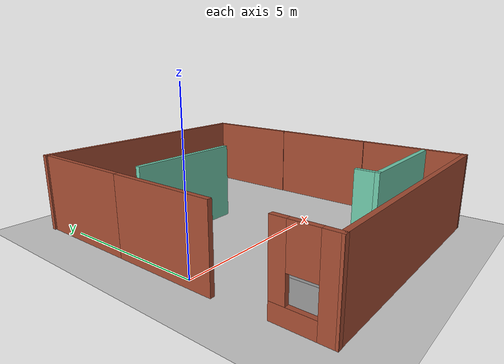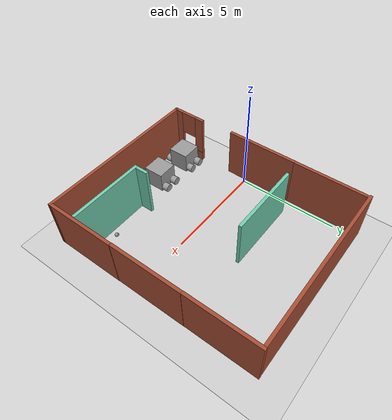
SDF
<sdf version="1.7">
 <world name="default">
  <plugin name="hello" filename="libhello.so"/>
  <light name="sun" type="directional">
   <pose>0 0 10 0 -0 0</pose>
   <diffuse>0.8 0.8 0.8 1</diffuse>
   <specular>0.2 0.2 0.2 1</specular>
   <attenuation>
    <range>1000</range>
    <constant>0.9</constant>
    <linear>0.01</linear>
    <quadratic>0.001</quadratic>
   </attenuation>
   <direction>-0.5 0.1 -0.9</direction>
   <spot><inner_angle>0</inner_angle><outer_angle>0</outer_angle><falloff>0</falloff></spot>
  </light>
  <model name="ground_plane">
   <static>1</static>
   <link name="link">
    <collision name="collision">
     <geometry><plane><normal>0 0 1</normal><size>100 100</size></plane></geometry>
     <surface>
      <contact><collide_bitmask>65535</collide_bitmask></contact>
      <friction><ode><mu>100</mu><mu2>50</mu2></ode></friction>
     </surface>
    </collision>
    <visual name="visual">
     <cast_shadows>0</cast_shadows>
     <geometry><plane><normal>0 0 1</normal><size>100 100</size></plane></geometry>
     <material>
      <script><uri>file://media/materials/scripts/gazebo.material</uri><name>Gazebo/Grey</name></script>
     </material>
    </visual>
   </link>
  </model>
  <gravity>0 0 -9.8</gravity>
  <magnetic_field>6e-06 2.3e-05 -4.2e-05</magnetic_field>
  <atmosphere type="adiabatic"/>
  <physics name="default_physics" default="0" type="ode">
   <max_step_size>0.001</max_step_size>
   <real_time_factor>1</real_time_factor>
   <real_time_update_rate>1000</real_time_update_rate>
  </physics>
  <scene><ambient>0.4 0.4 0.4 1</ambient><background>0.7 0.7 0.7 1</background><shadows>1</shadows></scene>
  <spherical_coordinates>
   <surface_model>EARTH_WGS84</surface_model>
   <latitude_deg>0</latitude_deg>
   <longitude_deg>0</longitude_deg>
   <elevation>0</elevation>
   <heading_deg>0</heading_deg>
  </spherical_coordinates>
  <model name="model">
   <link name="link_1">
    <inertial>
     <mass>1</mass>
     <inertia>
      <ixx>0.166667</ixx>
      <ixy>0</ixy>
      <ixz>0</ixz>
      <iyy>0.166667</iyy>
      <iyz>0</iyz>
      <izz>0.166667</izz>
     </inertia>
    </inertial>
    <pose>-1.26548 -3.71743 0.72499 0 -0 0</pose>
    <visual name="visual">
     <geometry><box><size>1 1 1</size></box></geometry>
     <material>
      <lighting>1</lighting>
      <script><uri>file://media/materials/scripts/gazebo.material</uri><name>Gazebo/Grey</name></script>
      <shader type="pixel"/>
      <emissive>0 0 0 1</emissive>
     </material>
    </visual>
    <collision name="collision">
     <geometry><box><size>1 1 1</size></box></geometry>
     <surface>
      <friction>
       <ode><mu>1</mu><mu2>1</mu2><fdir1>0 0 0</fdir1><slip1>0</slip1><slip2>0</slip2></ode>
       <torsional>
        <coefficient>1</coefficient>
        <patch_radius>0</patch_radius>
        <surface_radius>0</surface_radius>
        <use_patch_radius>1</use_patch_radius>
        <ode><slip>0</slip></ode>
       </torsional>
      </friction>
      <bounce><restitution_coefficient>0</restitution_coefficient><threshold>1e+06</threshold></bounce>
      <contact>
       <collide_without_contact>0</collide_without_contact>
       <collide_without_contact_bitmask>1</collide_without_contact_bitmask>
       <collide_bitmask>1</collide_bitmask>
       <ode>
        <soft_cfm>0</soft_cfm>
        <soft_erp>0.2</soft_erp>
        <kp>1e+13</kp>
        <kd>1</kd>
        <max_vel>0.01</max_vel>
        <min_depth>0</min_depth>
       </ode>
       <bullet>
        <split_impulse>1</split_impulse>
        <split_impulse_penetration_threshold>-0.01</split_impulse_penetration_threshold>
        <soft_cfm>0</soft_cfm>
        <soft_erp>0.2</soft_erp>
        <kp>1e+13</kp>
        <kd>1</kd>
       </bullet>
      </contact>
     </surface>
    </collision>
   </link>
   <link name="link_3">
    <inertial>
     <mass>1</mass>
     <inertia><ixx>0.145833</ixx><ixy>0</ixy><ixz>0</ixz><iyy>0.145833</iyy><iyz>0</iyz><izz>0.125</izz></inertia>
     <pose>0 0 0 1.5707 -0 0</pose>
    </inertial>
    <pose>-1.56548 -4.36745 0.425004 1.5707 -0 0</pose>
    <visual name="visual">
     <geometry><cylinder><radius>0.2</radius><length>0.3</length></cylinder></geometry>
     <material>
      <lighting>1</lighting>
      <script><uri>file://media/materials/scripts/gazebo.material</uri><name>Gazebo/Grey</name></script>
      <shader type="pixel"><normal_map>__default__</normal_map></shader>
      <ambient>0.3 0.3 0.3 1</ambient>
      <diffuse>0.7 0.7 0.7 1</diffuse>
      <specular>0.01 0.01 0.01 1</specular>
      <emissive>0 0 0 1</emissive>
     </material>
    </visual>
    <collision name="collision">
     <geometry><cylinder><radius>0.2</radius><length>0.3</length></cylinder></geometry>
     <surface>
      <friction>
       <ode><mu>1</mu><mu2>1</mu2><fdir1>0 0 0</fdir1><slip1>0</slip1><slip2>0</slip2></ode>
       <torsional>
        <coefficient>1</coefficient>
        <patch_radius>0</patch_radius>
        <surface_radius>0</surface_radius>
        <use_patch_radius>1</use_patch_radius>
        <ode><slip>0</slip></ode>
       </torsional>
      </friction>
      <bounce><restitution_coefficient>0</restitution_coefficient><threshold>1e+06</threshold></bounce>
      <contact>
       <collide_without_contact>0</collide_without_contact>
       <collide_without_contact_bitmask>1</collide_without_contact_bitmask>
       <collide_bitmask>1</collide_bitmask>
       <ode>
        <soft_cfm>0</soft_cfm>
        <soft_erp>0.2</soft_erp>
        <kp>1e+13</kp>
        <kd>1</kd>
        <max_vel>0.01</max_vel>
        <min_depth>0</min_depth>
       </ode>
       <bullet>
        <split_impulse>1</split_impulse>
        <split_impulse_penetration_threshold>-0.01</split_impulse_penetration_threshold>
        <soft_cfm>0</soft_cfm>
        <soft_erp>0.2</soft_erp>
        <kp>1e+13</kp>
        <kd>1</kd>
       </bullet>
      </contact>
     </surface>
    </collision>
   </link>
   <link name="link_3_clone">
    <inertial>
     <mass>1</mass>
     <inertia><ixx>0.145833</ixx><ixy>0</ixy><ixz>0</ixz><iyy>0.145833</iyy><iyz>0</iyz><izz>0.125</izz></inertia>
     <pose>0 0 0 1.5707 -0 0</pose>
    </inertial>
    <pose>-1.56523 -3.06657 0.425002 1.5707 -0 0</pose>
    <visual name="visual">
     <geometry><cylinder><radius>0.2</radius><length>0.3</length></cylinder></geometry>
     <material>
      <lighting>1</lighting>
      <script><uri>file://media/materials/scripts/gazebo.material</uri><name>Gazebo/Grey</name></script>
      <shader type="pixel"><normal_map>__default__</normal_map></shader>
      <ambient>0.3 0.3 0.3 1</ambient>
      <diffuse>0.7 0.7 0.7 1</diffuse>
      <specular>0.01 0.01 0.01 1</specular>
      <emissive>0 0 0 1</emissive>
     </material>
    </visual>
    <collision name="collision">
     <geometry><cylinder><radius>0.2</radius><length>0.3</length></cylinder></geometry>
     <surface>
      <friction>
       <ode><mu>1</mu><mu2>1</mu2><fdir1>0 0 0</fdir1><slip1>0</slip1><slip2>0</slip2></ode>
       <torsional>
        <coefficient>1</coefficient>
        <patch_radius>0</patch_radius>
        <surface_radius>0</surface_radius>
        <use_patch_radius>1</use_patch_radius>
        <ode><slip>0</slip></ode>
       </torsional>
      </friction>
      <bounce><restitution_coefficient>0</restitution_coefficient><threshold>1e+06</threshold></bounce>
      <contact>
       <collide_without_contact>0</collide_without_contact>
       <collide_without_contact_bitmask>1</collide_without_contact_bitmask>
       <collide_bitmask>1</collide_bitmask>
       <ode>
        <soft_cfm>0</soft_cfm>
        <soft_erp>0.2</soft_erp>
        <kp>1e+13</kp>
        <kd>1</kd>
        <max_vel>0.01</max_vel>
        <min_depth>0</min_depth>
       </ode>
       <bullet>
        <split_impulse>1</split_impulse>
        <split_impulse_penetration_threshold>-0.01</split_impulse_penetration_threshold>
        <soft_cfm>0</soft_cfm>
        <soft_erp>0.2</soft_erp>
        <kp>1e+13</kp>
        <kd>1</kd>
       </bullet>
      </contact>
     </surface>
    </collision>
   </link>
   <link name="link_3_clone_clone">
    <inertial>
     <mass>1</mass>
     <inertia><ixx>0.145833</ixx><ixy>0</ixy><ixz>0</ixz><iyy>0.145833</iyy><iyz>0</iyz><izz>0.125</izz></inertia>
     <pose>0 0 0 1.5707 -0 0</pose>
    </inertial>
    <pose>-0.965733 -4.36829 0.425001 1.5707 -0 0</pose>
    <visual name="visual">
     <geometry><cylinder><radius>0.2</radius><length>0.3</length></cylinder></geometry>
     <material>
      <lighting>1</lighting>
      <script><uri>file://media/materials/scripts/gazebo.material</uri><name>Gazebo/Grey</name></script>
      <shader type="pixel"><normal_map>__default__</normal_map></shader>
      <ambient>0.3 0.3 0.3 1</ambient>
      <diffuse>0.7 0.7 0.7 1</diffuse>
      <specular>0.01 0.01 0.01 1</specular>
      <emissive>0 0 0 1</emissive>
     </material>
    </visual>
    <collision name="collision">
     <geometry><cylinder><radius>0.2</radius><length>0.3</length></cylinder></geometry>
     <surface>
      <friction>
       <ode><mu>1</mu><mu2>1</mu2><fdir1>0 0 0</fdir1><slip1>0</slip1><slip2>0</slip2></ode>
       <torsional>
        <coefficient>1</coefficient>
        <patch_radius>0</patch_radius>
        <surface_radius>0</surface_radius>
        <use_patch_radius>1</use_patch_radius>
        <ode><slip>0</slip></ode>
       </torsional>
      </friction>
      <bounce><restitution_coefficient>0</restitution_coefficient><threshold>1e+06</threshold></bounce>
      <contact>
       <collide_without_contact>0</collide_without_contact>
       <collide_without_contact_bitmask>1</collide_without_contact_bitmask>
       <collide_bitmask>1</collide_bitmask>
       <ode>
        <soft_cfm>0</soft_cfm>
        <soft_erp>0.2</soft_erp>
        <kp>1e+13</kp>
        <kd>1</kd>
        <max_vel>0.01</max_vel>
        <min_depth>0</min_depth>
       </ode>
       <bullet>
        <split_impulse>1</split_impulse>
        <split_impulse_penetration_threshold>-0.01</split_impulse_penetration_threshold>
        <soft_cfm>0</soft_cfm>
        <soft_erp>0.2</soft_erp>
        <kp>1e+13</kp>
        <kd>1</kd>
       </bullet>
      </contact>
     </surface>
    </collision>
   </link>
   <link name="link_3_clone_clone_clone">
    <inertial>
     <mass>1</mass>
     <inertia><ixx>0.145833</ixx><ixy>0</ixy><ixz>0</ixz><iyy>0.145833</iyy><iyz>0</iyz><izz>0.125</izz></inertia>
     <pose>0 0 0 1.5707 -0 0</pose>
    </inertial>
    <pose>-0.964509 -3.06724 0.425003 1.5707 -1e-06 -0.000844</pose>
    <visual name="visual">
     <geometry><cylinder><radius>0.2</radius><length>0.3</length></cylinder></geometry>
     <material>
      <lighting>1</lighting>
      <script><uri>file://media/materials/scripts/gazebo.material</uri><name>Gazebo/Grey</name></script>
      <shader type="pixel"><normal_map>__default__</normal_map></shader>
      <ambient>0.3 0.3 0.3 1</ambient>
      <diffuse>0.7 0.7 0.7 1</diffuse>
      <specular>0.01 0.01 0.01 1</specular>
      <emissive>0 0 0 1</emissive>
     </material>
    </visual>
    <collision name="collision">
     <geometry><cylinder><radius>0.2</radius><length>0.3</length></cylinder></geometry>
     <surface>
      <friction>
       <ode><mu>1</mu><mu2>1</mu2><fdir1>0 0 0</fdir1><slip1>0</slip1><slip2>0</slip2></ode>
       <torsional>
        <coefficient>1</coefficient>
        <patch_radius>0</patch_radius>
        <surface_radius>0</surface_radius>
        <use_patch_radius>1</use_patch_radius>
        <ode><slip>0</slip></ode>
       </torsional>
      </friction>
      <bounce><restitution_coefficient>0</restitution_coefficient><threshold>1e+06</threshold></bounce>
      <contact>
       <collide_without_contact>0</collide_without_contact>
       <collide_without_contact_bitmask>1</collide_without_contact_bitmask>
       <collide_bitmask>1</collide_bitmask>
       <ode>
        <soft_cfm>0</soft_cfm>
        <soft_erp>0.2</soft_erp>
        <kp>1e+13</kp>
        <kd>1</kd>
        <max_vel>0.01</max_vel>
        <min_depth>0</min_depth>
       </ode>
       <bullet>
        <split_impulse>1</split_impulse>
        <split_impulse_penetration_threshold>-0.01</split_impulse_penetration_threshold>
        <soft_cfm>0</soft_cfm>
        <soft_erp>0.2</soft_erp>
        <kp>1e+13</kp>
        <kd>1</kd>
       </bullet>
      </contact>
     </surface>
    </collision>
   </link>
   <joint name="link_1_JOINT_0_0" type="revolute">
    <parent>link_1</parent>
    <child>link_3_clone</child>
    <axis>
     <xyz>0 0 1</xyz>
     <limit>
      <lower>-1.79769e+308</lower>
      <upper>1.79769e+308</upper>
      <effort>-1</effort>
      <velocity>-1</velocity>
     </limit>
     <dynamics>
      <spring_reference>0</spring_reference>
      <spring_stiffness>0</spring_stiffness>
      <damping>0</damping>
      <friction>0</friction>
     </dynamics>
    </axis>
    <physics>
     <ode><limit><cfm>0</cfm><erp>0.2</erp></limit><suspension><cfm>0</cfm><erp>0.2</erp></suspension></ode>
    </physics>
   </joint>
   <joint name="link_1_JOINT_0" type="revolute">
    <parent>link_1</parent>
    <child>link_3</child>
    <pose>0 0 0 0 -0.09 0</pose>
    <axis>
     <xyz>0 0 1</xyz>
     <limit>
      <lower>-1.79769e+308</lower>
      <upper>1.79769e+308</upper>
      <effort>-1</effort>
      <velocity>-1</velocity>
     </limit>
     <dynamics>
      <spring_reference>0</spring_reference>
      <spring_stiffness>0</spring_stiffness>
      <damping>0</damping>
      <friction>0</friction>
     </dynamics>
    </axis>
    <physics>
     <ode><limit><cfm>0</cfm><erp>0.2</erp></limit><suspension><cfm>0</cfm><erp>0.2</erp></suspension></ode>
    </physics>
   </joint>
   <joint name="link_1_JOINT_1" type="revolute">
    <parent>link_1</parent>
    <child>link_3_clone_clone_clone</child>
    <axis>
     <xyz>0 0 1</xyz>
     <limit>
      <lower>-1.79769e+308</lower>
      <upper>1.79769e+308</upper>
      <effort>-1</effort>
      <velocity>-1</velocity>
     </limit>
     <dynamics>
      <spring_reference>0</spring_reference>
      <spring_stiffness>0</spring_stiffness>
      <damping>0</damping>
      <friction>0</friction>
     </dynamics>
    </axis>
    <physics>
     <ode><limit><cfm>0</cfm><erp>0.2</erp></limit><suspension><cfm>0</cfm><erp>0.2</erp></suspension></ode>
    </physics>
   </joint>
   <joint name="link_1_JOINT_2" type="revolute">
    <parent>link_1</parent>
    <child>link_3_clone_clone</child>
    <axis>
     <xyz>0 0 1</xyz>
     <limit>
      <lower>-1.79769e+308</lower>
      <upper>1.79769e+308</upper>
      <effort>-1</effort>
      <velocity>-1</velocity>
     </limit>
     <dynamics>
      <spring_reference>0</spring_reference>
      <spring_stiffness>0</spring_stiffness>
      <damping>0</damping>
      <friction>0</friction>
     </dynamics>
    </axis>
    <physics>
     <ode><limit><cfm>0</cfm><erp>0.2</erp></limit><suspension><cfm>0</cfm><erp>0.2</erp></suspension></ode>
    </physics>
   </joint>
   <static>0</static>
   <pose>3.68662 0.343445 -0.224975 3e-06 -2e-06 0.014338</pose>
  </model>
  <model name="model_0">
   <link name="link_1">
    <inertial>
     <mass>1</mass>
     <inertia>
      <ixx>0.166667</ixx>
      <ixy>0</ixy>
      <ixz>0</ixz>
      <iyy>0.166667</iyy>
      <iyz>0</iyz>
      <izz>0.166667</izz>
     </inertia>
    </inertial>
    <pose>-1.26548 -3.71743 0.72499 0 -0 0</pose>
    <visual name="visual">
     <geometry><box><size>1 1 1</size></box></geometry>
     <material>
      <lighting>1</lighting>
      <script><uri>file://media/materials/scripts/gazebo.material</uri><name>Gazebo/Grey</name></script>
      <shader type="pixel"/>
      <emissive>0 0 0 1</emissive>
     </material>
    </visual>
    <collision name="collision">
     <geometry><box><size>1 1 1</size></box></geometry>
     <surface>
      <friction>
       <ode><mu>1</mu><mu2>1</mu2><fdir1>0 0 0</fdir1><slip1>0</slip1><slip2>0</slip2></ode>
       <torsional>
        <coefficient>1</coefficient>
        <patch_radius>0</patch_radius>
        <surface_radius>0</surface_radius>
        <use_patch_radius>1</use_patch_radius>
        <ode><slip>0</slip></ode>
       </torsional>
      </friction>
      <bounce><restitution_coefficient>0</restitution_coefficient><threshold>1e+06</threshold></bounce>
      <contact>
       <collide_without_contact>0</collide_without_contact>
       <collide_without_contact_bitmask>1</collide_without_contact_bitmask>
       <collide_bitmask>1</collide_bitmask>
       <ode>
        <soft_cfm>0</soft_cfm>
        <soft_erp>0.2</soft_erp>
        <kp>1e+13</kp>
        <kd>1</kd>
        <max_vel>0.01</max_vel>
        <min_depth>0</min_depth>
       </ode>
       <bullet>
        <split_impulse>1</split_impulse>
        <split_impulse_penetration_threshold>-0.01</split_impulse_penetration_threshold>
        <soft_cfm>0</soft_cfm>
        <soft_erp>0.2</soft_erp>
        <kp>1e+13</kp>
        <kd>1</kd>
       </bullet>
      </contact>
     </surface>
    </collision>
   </link>
   <link name="link_3">
    <inertial>
     <mass>1</mass>
     <inertia><ixx>0.145833</ixx><ixy>0</ixy><ixz>0</ixz><iyy>0.145833</iyy><iyz>0</iyz><izz>0.125</izz></inertia>
     <pose>0 0 0 1.5707 -0 0</pose>
    </inertial>
    <pose>-1.56548 -4.36745 0.425004 1.5707 -0 0</pose>
    <visual name="visual">
     <geometry><cylinder><radius>0.2</radius><length>0.3</length></cylinder></geometry>
     <material>
      <lighting>1</lighting>
      <script><uri>file://media/materials/scripts/gazebo.material</uri><name>Gazebo/Grey</name></script>
      <shader type="pixel"><normal_map>__default__</normal_map></shader>
      <ambient>0.3 0.3 0.3 1</ambient>
      <diffuse>0.7 0.7 0.7 1</diffuse>
      <specular>0.01 0.01 0.01 1</specular>
      <emissive>0 0 0 1</emissive>
     </material>
    </visual>
    <collision name="collision">
     <geometry><cylinder><radius>0.2</radius><length>0.3</length></cylinder></geometry>
     <surface>
      <friction>
       <ode><mu>1</mu><mu2>1</mu2><fdir1>0 0 0</fdir1><slip1>0</slip1><slip2>0</slip2></ode>
       <torsional>
        <coefficient>1</coefficient>
        <patch_radius>0</patch_radius>
        <surface_radius>0</surface_radius>
        <use_patch_radius>1</use_patch_radius>
        <ode><slip>0</slip></ode>
       </torsional>
      </friction>
      <bounce><restitution_coefficient>0</restitution_coefficient><threshold>1e+06</threshold></bounce>
      <contact>
       <collide_without_contact>0</collide_without_contact>
       <collide_without_contact_bitmask>1</collide_without_contact_bitmask>
       <collide_bitmask>1</collide_bitmask>
       <ode>
        <soft_cfm>0</soft_cfm>
        <soft_erp>0.2</soft_erp>
        <kp>1e+13</kp>
        <kd>1</kd>
        <max_vel>0.01</max_vel>
        <min_depth>0</min_depth>
       </ode>
       <bullet>
        <split_impulse>1</split_impulse>
        <split_impulse_penetration_threshold>-0.01</split_impulse_penetration_threshold>
        <soft_cfm>0</soft_cfm>
        <soft_erp>0.2</soft_erp>
        <kp>1e+13</kp>
        <kd>1</kd>
       </bullet>
      </contact>
     </surface>
    </collision>
   </link>
   <link name="link_3_clone">
    <inertial>
     <mass>1</mass>
     <inertia><ixx>0.145833</ixx><ixy>0</ixy><ixz>0</ixz><iyy>0.145833</iyy><iyz>0</iyz><izz>0.125</izz></inertia>
     <pose>0 0 0 1.5707 -0 0</pose>
    </inertial>
    <pose>-1.56523 -3.06657 0.425002 1.5707 -0 0</pose>
    <visual name="visual">
     <geometry><cylinder><radius>0.2</radius><length>0.3</length></cylinder></geometry>
     <material>
      <lighting>1</lighting>
      <script><uri>file://media/materials/scripts/gazebo.material</uri><name>Gazebo/Grey</name></script>
      <shader type="pixel"><normal_map>__default__</normal_map></shader>
      <ambient>0.3 0.3 0.3 1</ambient>
      <diffuse>0.7 0.7 0.7 1</diffuse>
      <specular>0.01 0.01 0.01 1</specular>
      <emissive>0 0 0 1</emissive>
     </material>
    </visual>
    <collision name="collision">
     <geometry><cylinder><radius>0.2</radius><length>0.3</length></cylinder></geometry>
     <surface>
      <friction>
       <ode><mu>1</mu><mu2>1</mu2><fdir1>0 0 0</fdir1><slip1>0</slip1><slip2>0</slip2></ode>
       <torsional>
        <coefficient>1</coefficient>
        <patch_radius>0</patch_radius>
        <surface_radius>0</surface_radius>
        <use_patch_radius>1</use_patch_radius>
        <ode><slip>0</slip></ode>
       </torsional>
      </friction>
      <bounce><restitution_coefficient>0</restitution_coefficient><threshold>1e+06</threshold></bounce>
      <contact>
       <collide_without_contact>0</collide_without_contact>
       <collide_without_contact_bitmask>1</collide_without_contact_bitmask>
       <collide_bitmask>1</collide_bitmask>
       <ode>
        <soft_cfm>0</soft_cfm>
        <soft_erp>0.2</soft_erp>
        <kp>1e+13</kp>
        <kd>1</kd>
        <max_vel>0.01</max_vel>
        <min_depth>0</min_depth>
       </ode>
       <bullet>
        <split_impulse>1</split_impulse>
        <split_impulse_penetration_threshold>-0.01</split_impulse_penetration_threshold>
        <soft_cfm>0</soft_cfm>
        <soft_erp>0.2</soft_erp>
        <kp>1e+13</kp>
        <kd>1</kd>
       </bullet>
      </contact>
     </surface>
    </collision>
   </link>
   <link name="link_3_clone_clone">
    <inertial>
     <mass>1</mass>
     <inertia><ixx>0.145833</ixx><ixy>0</ixy><ixz>0</ixz><iyy>0.145833</iyy><iyz>0</iyz><izz>0.125</izz></inertia>
     <pose>0 0 0 1.5707 -0 0</pose>
    </inertial>
    <pose>-0.965733 -4.36829 0.425001 1.5707 -0 0</pose>
    <visual name="visual">
     <geometry><cylinder><radius>0.2</radius><length>0.3</length></cylinder></geometry>
     <material>
      <lighting>1</lighting>
      <script><uri>file://media/materials/scripts/gazebo.material</uri><name>Gazebo/Grey</name></script>
      <shader type="pixel"><normal_map>__default__</normal_map></shader>
      <ambient>0.3 0.3 0.3 1</ambient>
      <diffuse>0.7 0.7 0.7 1</diffuse>
      <specular>0.01 0.01 0.01 1</specular>
      <emissive>0 0 0 1</emissive>
     </material>
    </visual>
    <collision name="collision">
     <geometry><cylinder><radius>0.2</radius><length>0.3</length></cylinder></geometry>
     <surface>
      <friction>
       <ode><mu>1</mu><mu2>1</mu2><fdir1>0 0 0</fdir1><slip1>0</slip1><slip2>0</slip2></ode>
       <torsional>
        <coefficient>1</coefficient>
        <patch_radius>0</patch_radius>
        <surface_radius>0</surface_radius>
        <use_patch_radius>1</use_patch_radius>
        <ode><slip>0</slip></ode>
       </torsional>
      </friction>
      <bounce><restitution_coefficient>0</restitution_coefficient><threshold>1e+06</threshold></bounce>
      <contact>
       <collide_without_contact>0</collide_without_contact>
       <collide_without_contact_bitmask>1</collide_without_contact_bitmask>
       <collide_bitmask>1</collide_bitmask>
       <ode>
        <soft_cfm>0</soft_cfm>
        <soft_erp>0.2</soft_erp>
        <kp>1e+13</kp>
        <kd>1</kd>
        <max_vel>0.01</max_vel>
        <min_depth>0</min_depth>
       </ode>
       <bullet>
        <split_impulse>1</split_impulse>
        <split_impulse_penetration_threshold>-0.01</split_impulse_penetration_threshold>
        <soft_cfm>0</soft_cfm>
        <soft_erp>0.2</soft_erp>
        <kp>1e+13</kp>
        <kd>1</kd>
       </bullet>
      </contact>
     </surface>
    </collision>
   </link>
   <link name="link_3_clone_clone_clone">
    <inertial>
     <mass>1</mass>
     <inertia><ixx>0.145833</ixx><ixy>0</ixy><ixz>0</ixz><iyy>0.145833</iyy><iyz>0</iyz><izz>0.125</izz></inertia>
     <pose>0 0 0 1.5707 -0 0</pose>
    </inertial>
    <pose>-0.964509 -3.06724 0.425003 1.5707 -1e-06 -0.000844</pose>
    <visual name="visual">
     <geometry><cylinder><radius>0.2</radius><length>0.3</length></cylinder></geometry>
     <material>
      <lighting>1</lighting>
      <script><uri>file://media/materials/scripts/gazebo.material</uri><name>Gazebo/Grey</name></script>
      <shader type="pixel"><normal_map>__default__</normal_map></shader>
      <ambient>0.3 0.3 0.3 1</ambient>
      <diffuse>0.7 0.7 0.7 1</diffuse>
      <specular>0.01 0.01 0.01 1</specular>
      <emissive>0 0 0 1</emissive>
     </material>
    </visual>
    <collision name="collision">
     <geometry><cylinder><radius>0.2</radius><length>0.3</length></cylinder></geometry>
     <surface>
      <friction>
       <ode><mu>1</mu><mu2>1</mu2><fdir1>0 0 0</fdir1><slip1>0</slip1><slip2>0</slip2></ode>
       <torsional>
        <coefficient>1</coefficient>
        <patch_radius>0</patch_radius>
        <surface_radius>0</surface_radius>
        <use_patch_radius>1</use_patch_radius>
        <ode><slip>0</slip></ode>
       </torsional>
      </friction>
      <bounce><restitution_coefficient>0</restitution_coefficient><threshold>1e+06</threshold></bounce>
      <contact>
       <collide_without_contact>0</collide_without_contact>
       <collide_without_contact_bitmask>1</collide_without_contact_bitmask>
       <collide_bitmask>1</collide_bitmask>
       <ode>
        <soft_cfm>0</soft_cfm>
        <soft_erp>0.2</soft_erp>
        <kp>1e+13</kp>
        <kd>1</kd>
        <max_vel>0.01</max_vel>
        <min_depth>0</min_depth>
       </ode>
       <bullet>
        <split_impulse>1</split_impulse>
        <split_impulse_penetration_threshold>-0.01</split_impulse_penetration_threshold>
        <soft_cfm>0</soft_cfm>
        <soft_erp>0.2</soft_erp>
        <kp>1e+13</kp>
        <kd>1</kd>
       </bullet>
      </contact>
     </surface>
    </collision>
   </link>
   <joint name="link_1_JOINT_0_0" type="revolute">
    <parent>link_1</parent>
    <child>link_3_clone</child>
    <axis>
     <xyz>0 0 1</xyz>
     <limit>
      <lower>-1.79769e+308</lower>
      <upper>1.79769e+308</upper>
      <effort>-1</effort>
      <velocity>-1</velocity>
     </limit>
     <dynamics>
      <spring_reference>0</spring_reference>
      <spring_stiffness>0</spring_stiffness>
      <damping>0</damping>
      <friction>0</friction>
     </dynamics>
    </axis>
    <physics>
     <ode><limit><cfm>0</cfm><erp>0.2</erp></limit><suspension><cfm>0</cfm><erp>0.2</erp></suspension></ode>
    </physics>
   </joint>
   <joint name="link_1_JOINT_0" type="revolute">
    <parent>link_1</parent>
    <child>link_3</child>
    <pose>0 0 0 0 -0.09 0</pose>
    <axis>
     <xyz>0 0 1</xyz>
     <limit>
      <lower>-1.79769e+308</lower>
      <upper>1.79769e+308</upper>
      <effort>-1</effort>
      <velocity>-1</velocity>
     </limit>
     <dynamics>
      <spring_reference>0</spring_reference>
      <spring_stiffness>0</spring_stiffness>
      <damping>0</damping>
      <friction>0</friction>
     </dynamics>
    </axis>
    <physics>
     <ode><limit><cfm>0</cfm><erp>0.2</erp></limit><suspension><cfm>0</cfm><erp>0.2</erp></suspension></ode>
    </physics>
   </joint>
   <joint name="link_1_JOINT_1" type="revolute">
    <parent>link_1</parent>
    <child>link_3_clone_clone_clone</child>
    <axis>
     <xyz>0 0 1</xyz>
     <limit>
      <lower>-1.79769e+308</lower>
      <upper>1.79769e+308</upper>
      <effort>-1</effort>
      <velocity>-1</velocity>
     </limit>
     <dynamics>
      <spring_reference>0</spring_reference>
      <spring_stiffness>0</spring_stiffness>
      <damping>0</damping>
      <friction>0</friction>
     </dynamics>
    </axis>
    <physics>
     <ode><limit><cfm>0</cfm><erp>0.2</erp></limit><suspension><cfm>0</cfm><erp>0.2</erp></suspension></ode>
    </physics>
   </joint>
   <joint name="link_1_JOINT_2" type="revolute">
    <parent>link_1</parent>
    <child>link_3_clone_clone</child>
    <axis>
     <xyz>0 0 1</xyz>
     <limit>
      <lower>-1.79769e+308</lower>
      <upper>1.79769e+308</upper>
      <effort>-1</effort>
      <velocity>-1</velocity>
     </limit>
     <dynamics>
      <spring_reference>0</spring_reference>
      <spring_stiffness>0</spring_stiffness>
      <damping>0</damping>
      <friction>0</friction>
     </dynamics>
    </axis>
    <physics>
     <ode><limit><cfm>0</cfm><erp>0.2</erp></limit><suspension><cfm>0</cfm><erp>0.2</erp></suspension></ode>
    </physics>
   </joint>
   <static>0</static>
   <pose>1.89145 0.427018 -0.224975 2e-06 -4e-06 0.013382</pose>
  </model>
  <model name="my_ball">
   <link name="link_0">
    <inertial>
     <mass>1</mass>
     <inertia><ixx>0.1</ixx><ixy>0</ixy><ixz>0</ixz><iyy>0.1</iyy><iyz>0</iyz><izz>0.1</izz></inertia>
    </inertial>
    <visual name="visual">
     <geometry><sphere><radius>0.1</radius></sphere></geometry>
     <material>
      <lighting>1</lighting>
      <script><uri>file://media/materials/scripts/gazebo.material</uri><name>Gazebo/Grey</name></script>
      <shader type="pixel"><normal_map>__default__</normal_map></shader>
      <ambient>1 1 1 1</ambient>
      <diffuse>1 1 1 1</diffuse>
      <specular>1 1 1 1</specular>
      <emissive>1 1 1 1</emissive>
     </material>
    </visual>
    <collision name="collision">
     <geometry><sphere><radius>0.1</radius></sphere></geometry>
     <surface>
      <friction>
       <ode><mu>1</mu><mu2>1</mu2><fdir1>0 0 0</fdir1><slip1>0</slip1><slip2>0</slip2></ode>
       <torsional>
        <coefficient>1</coefficient>
        <patch_radius>0</patch_radius>
        <surface_radius>0</surface_radius>
        <use_patch_radius>1</use_patch_radius>
        <ode><slip>0</slip></ode>
       </torsional>
      </friction>
      <bounce><restitution_coefficient>0</restitution_coefficient><threshold>1e+06</threshold></bounce>
      <contact>
       <collide_without_contact>0</collide_without_contact>
       <collide_without_contact_bitmask>1</collide_without_contact_bitmask>
       <collide_bitmask>1</collide_bitmask>
       <ode>
        <soft_cfm>0</soft_cfm>
        <soft_erp>0.2</soft_erp>
        <kp>1e+13</kp>
        <kd>1</kd>
        <max_vel>0.01</max_vel>
        <min_depth>0</min_depth>
       </ode>
       <bullet>
        <split_impulse>1</split_impulse>
        <split_impulse_penetration_threshold>-0.01</split_impulse_penetration_threshold>
        <soft_cfm>0</soft_cfm>
        <soft_erp>0.2</soft_erp>
        <kp>1e+13</kp>
        <kd>1</kd>
       </bullet>
      </contact>
     </surface>
    </collision>
   </link>
   <static>0</static>
   <pose>6.38204 -2.66558 0.1 0 -0 0</pose>
  </model>
  <model name="world2">
   <link name="Wall_1">
    <pose>4.05 -0.347407 0 0 0 -1.5708</pose>
    <visual name="Wall_1_Visual">
     <pose>0 0 1.25 0 -0 0</pose>
     <geometry><box><size>3.5 0.15 2.5</size></box></geometry>
     <material>
      <script><uri>file://media/materials/scripts/gazebo.material</uri><name>Gazebo/Bricks</name></script>
      <ambient>1 1 1 1</ambient>
      <shader type="pixel"/>
     </material>
     <meta><layer>0</layer></meta>
    </visual>
    <collision name="Wall_1_Collision">
     <pose>0 0 1.25 0 -0 0</pose>
     <geometry><box><size>3.5 0.15 2.5</size></box></geometry>
     <surface>
      <friction>
       <ode><mu>1</mu><mu2>1</mu2><fdir1>0 0 0</fdir1><slip1>0</slip1><slip2>0</slip2></ode>
       <torsional>
        <coefficient>1</coefficient>
        <patch_radius>0</patch_radius>
        <surface_radius>0</surface_radius>
        <use_patch_radius>1</use_patch_radius>
        <ode><slip>0</slip></ode>
       </torsional>
      </friction>
      <bounce><restitution_coefficient>0</restitution_coefficient><threshold>1e+06</threshold></bounce>
      <contact>
       <collide_without_contact>0</collide_without_contact>
       <collide_without_contact_bitmask>1</collide_without_contact_bitmask>
       <collide_bitmask>1</collide_bitmask>
       <ode>
        <soft_cfm>0</soft_cfm>
        <soft_erp>0.2</soft_erp>
        <kp>1e+13</kp>
        <kd>1</kd>
        <max_vel>0.01</max_vel>
        <min_depth>0</min_depth>
       </ode>
       <bullet>
        <split_impulse>1</split_impulse>
        <split_impulse_penetration_threshold>-0.01</split_impulse_penetration_threshold>
        <soft_cfm>0</soft_cfm>
        <soft_erp>0.2</soft_erp>
        <kp>1e+13</kp>
        <kd>1</kd>
       </bullet>
      </contact>
     </surface>
    </collision>
   </link>
   <link name="Wall_1_clone">
    <pose>4.0407 3.16567 0 0 0 -1.5708</pose>
    <visual name="Wall_1_Visual">
     <pose>0 0 1.25 0 -0 0</pose>
     <geometry><box><size>3.5 0.15 2.5</size></box></geometry>
     <material>
      <script><uri>file://media/materials/scripts/gazebo.material</uri><name>Gazebo/Bricks</name></script>
      <ambient>1 1 1 1</ambient>
      <shader type="pixel"/>
     </material>
     <meta><layer>0</layer></meta>
    </visual>
    <collision name="Wall_1_Collision">
     <pose>0 0 1.25 0 -0 0</pose>
     <geometry><box><size>3.5 0.15 2.5</size></box></geometry>
     <surface>
      <friction>
       <ode><mu>1</mu><mu2>1</mu2><fdir1>0 0 0</fdir1><slip1>0</slip1><slip2>0</slip2></ode>
       <torsional>
        <coefficient>1</coefficient>
        <patch_radius>0</patch_radius>
        <surface_radius>0</surface_radius>
        <use_patch_radius>1</use_patch_radius>
        <ode><slip>0</slip></ode>
       </torsional>
      </friction>
      <bounce><restitution_coefficient>0</restitution_coefficient><threshold>1e+06</threshold></bounce>
      <contact>
       <collide_without_contact>0</collide_without_contact>
       <collide_without_contact_bitmask>1</collide_without_contact_bitmask>
       <collide_bitmask>1</collide_bitmask>
       <ode>
        <soft_cfm>0</soft_cfm>
        <soft_erp>0.2</soft_erp>
        <kp>1e+13</kp>
        <kd>1</kd>
        <max_vel>0.01</max_vel>
        <min_depth>0</min_depth>
       </ode>
       <bullet>
        <split_impulse>1</split_impulse>
        <split_impulse_penetration_threshold>-0.01</split_impulse_penetration_threshold>
        <soft_cfm>0</soft_cfm>
        <soft_erp>0.2</soft_erp>
        <kp>1e+13</kp>
        <kd>1</kd>
       </bullet>
      </contact>
     </surface>
    </collision>
   </link>
   <link name="Wall_1_clone_0">
    <pose>4.03374 6.67176 0 0 0 -1.5708</pose>
    <visual name="Wall_1_Visual">
     <pose>0 0 1.25 0 -0 0</pose>
     <geometry><box><size>3.5 0.15 2.5</size></box></geometry>
     <material>
      <script><uri>file://media/materials/scripts/gazebo.material</uri><name>Gazebo/Bricks</name></script>
      <ambient>1 1 1 1</ambient>
      <shader type="pixel"/>
     </material>
     <meta><layer>0</layer></meta>
    </visual>
    <collision name="Wall_1_Collision">
     <pose>0 0 1.25 0 -0 0</pose>
     <geometry><box><size>3.5 0.15 2.5</size></box></geometry>
     <surface>
      <friction>
       <ode><mu>1</mu><mu2>1</mu2><fdir1>0 0 0</fdir1><slip1>0</slip1><slip2>0</slip2></ode>
       <torsional>
        <coefficient>1</coefficient>
        <patch_radius>0</patch_radius>
        <surface_radius>0</surface_radius>
        <use_patch_radius>1</use_patch_radius>
        <ode><slip>0</slip></ode>
       </torsional>
      </friction>
      <bounce><restitution_coefficient>0</restitution_coefficient><threshold>1e+06</threshold></bounce>
      <contact>
       <collide_without_contact>0</collide_without_contact>
       <collide_without_contact_bitmask>1</collide_without_contact_bitmask>
       <collide_bitmask>1</collide_bitmask>
       <ode>
        <soft_cfm>0</soft_cfm>
        <soft_erp>0.2</soft_erp>
        <kp>1e+13</kp>
        <kd>1</kd>
        <max_vel>0.01</max_vel>
        <min_depth>0</min_depth>
       </ode>
       <bullet>
        <split_impulse>1</split_impulse>
        <split_impulse_penetration_threshold>-0.01</split_impulse_penetration_threshold>
        <soft_cfm>0</soft_cfm>
        <soft_erp>0.2</soft_erp>
        <kp>1e+13</kp>
        <kd>1</kd>
       </bullet>
      </contact>
     </surface>
    </collision>
   </link>
   <link name="Wall_1_clone_clone">
    <pose>-4.16892 6.49627 0 0 0 -1.5708</pose>
    <visual name="Wall_1_Visual">
     <pose>0 0 1.25 0 -0 0</pose>
     <geometry><box><size>3.5 0.15 2.5</size></box></geometry>
     <material>
      <script><uri>file://media/materials/scripts/gazebo.material</uri><name>Gazebo/Bricks</name></script>
      <ambient>1 1 1 1</ambient>
      <shader type="pixel"/>
     </material>
     <meta><layer>0</layer></meta>
    </visual>
    <collision name="Wall_1_Collision">
     <pose>0 0 1.25 0 -0 0</pose>
     <geometry><box><size>3.5 0.15 2.5</size></box></geometry>
     <surface>
      <friction>
       <ode><mu>1</mu><mu2>1</mu2><fdir1>0 0 0</fdir1><slip1>0</slip1><slip2>0</slip2></ode>
       <torsional>
        <coefficient>1</coefficient>
        <patch_radius>0</patch_radius>
        <surface_radius>0</surface_radius>
        <use_patch_radius>1</use_patch_radius>
        <ode><slip>0</slip></ode>
       </torsional>
      </friction>
      <bounce><restitution_coefficient>0</restitution_coefficient><threshold>1e+06</threshold></bounce>
      <contact>
       <collide_without_contact>0</collide_without_contact>
       <collide_without_contact_bitmask>1</collide_without_contact_bitmask>
       <collide_bitmask>1</collide_bitmask>
       <ode>
        <soft_cfm>0</soft_cfm>
        <soft_erp>0.2</soft_erp>
        <kp>1e+13</kp>
        <kd>1</kd>
        <max_vel>0.01</max_vel>
        <min_depth>0</min_depth>
       </ode>
       <bullet>
        <split_impulse>1</split_impulse>
        <split_impulse_penetration_threshold>-0.01</split_impulse_penetration_threshold>
        <soft_cfm>0</soft_cfm>
        <soft_erp>0.2</soft_erp>
        <kp>1e+13</kp>
        <kd>1</kd>
       </bullet>
      </contact>
     </surface>
    </collision>
   </link>
   <link name="Wall_1_clone_clone_clone">
    <pose>-4.17385 3.01099 0 0 0 -1.5708</pose>
    <visual name="Wall_1_Visual">
     <pose>0 0 1.25 0 -0 0</pose>
     <geometry><box><size>3.5 0.15 2.5</size></box></geometry>
     <material>
      <script><uri>file://media/materials/scripts/gazebo.material</uri><name>Gazebo/Bricks</name></script>
      <ambient>1 1 1 1</ambient>
      <shader type="pixel"/>
     </material>
     <meta><layer>0</layer></meta>
    </visual>
    <collision name="Wall_1_Collision">
     <pose>0 0 1.25 0 -0 0</pose>
     <geometry><box><size>3.5 0.15 2.5</size></box></geometry>
     <surface>
      <friction>
       <ode><mu>1</mu><mu2>1</mu2><fdir1>0 0 0</fdir1><slip1>0</slip1><slip2>0</slip2></ode>
       <torsional>
        <coefficient>1</coefficient>
        <patch_radius>0</patch_radius>
        <surface_radius>0</surface_radius>
        <use_patch_radius>1</use_patch_radius>
        <ode><slip>0</slip></ode>
       </torsional>
      </friction>
      <bounce><restitution_coefficient>0</restitution_coefficient><threshold>1e+06</threshold></bounce>
      <contact>
       <collide_without_contact>0</collide_without_contact>
       <collide_without_contact_bitmask>1</collide_without_contact_bitmask>
       <collide_bitmask>1</collide_bitmask>
       <ode>
        <soft_cfm>0</soft_cfm>
        <soft_erp>0.2</soft_erp>
        <kp>1e+13</kp>
        <kd>1</kd>
        <max_vel>0.01</max_vel>
        <min_depth>0</min_depth>
       </ode>
       <bullet>
        <split_impulse>1</split_impulse>
        <split_impulse_penetration_threshold>-0.01</split_impulse_penetration_threshold>
        <soft_cfm>0</soft_cfm>
        <soft_erp>0.2</soft_erp>
        <kp>1e+13</kp>
        <kd>1</kd>
       </bullet>
      </contact>
     </surface>
    </collision>
   </link>
   <link name="Wall_2">
    <pose>0 -2.01241 0 0 -0 3.13912</pose>
    <visual name="Wall_2_Visual">
     <pose>0 0 1.25 0 -0 0</pose>
     <geometry><box><size>8.25 0.15 2.5</size></box></geometry>
     <material>
      <script><uri>file://media/materials/scripts/gazebo.material</uri><name>Gazebo/Bricks</name></script>
      <ambient>1 1 1 1</ambient>
      <shader type="pixel"/>
     </material>
     <meta><layer>0</layer></meta>
    </visual>
    <collision name="Wall_2_Collision">
     <pose>0 0 1.25 0 -0 0</pose>
     <geometry><box><size>8.25 0.15 2.5</size></box></geometry>
     <surface>
      <friction>
       <ode><mu>1</mu><mu2>1</mu2><fdir1>0 0 0</fdir1><slip1>0</slip1><slip2>0</slip2></ode>
       <torsional>
        <coefficient>1</coefficient>
        <patch_radius>0</patch_radius>
        <surface_radius>0</surface_radius>
        <use_patch_radius>1</use_patch_radius>
        <ode><slip>0</slip></ode>
       </torsional>
      </friction>
      <bounce><restitution_coefficient>0</restitution_coefficient><threshold>1e+06</threshold></bounce>
      <contact>
       <collide_without_contact>0</collide_without_contact>
       <collide_without_contact_bitmask>1</collide_without_contact_bitmask>
       <collide_bitmask>1</collide_bitmask>
       <ode>
        <soft_cfm>0</soft_cfm>
        <soft_erp>0.2</soft_erp>
        <kp>1e+13</kp>
        <kd>1</kd>
        <max_vel>0.01</max_vel>
        <min_depth>0</min_depth>
       </ode>
       <bullet>
        <split_impulse>1</split_impulse>
        <split_impulse_penetration_threshold>-0.01</split_impulse_penetration_threshold>
        <soft_cfm>0</soft_cfm>
        <soft_erp>0.2</soft_erp>
        <kp>1e+13</kp>
        <kd>1</kd>
       </bullet>
      </contact>
     </surface>
    </collision>
   </link>
   <link name="Wall_2_clone">
    <pose>-0.156101 8.34941 0 0 -0 3.13912</pose>
    <visual name="Wall_2_Visual">
     <pose>0 0 1.25 0 -0 0</pose>
     <geometry><box><size>8.25 0.15 2.5</size></box></geometry>
     <material>
      <script><uri>file://media/materials/scripts/gazebo.material</uri><name>Gazebo/Bricks</name></script>
      <ambient>1 1 1 1</ambient>
      <shader type="pixel"/>
     </material>
     <meta><layer>0</layer></meta>
    </visual>
    <collision name="Wall_2_Collision">
     <pose>0 0 1.25 0 -0 0</pose>
     <geometry><box><size>8.25 0.15 2.5</size></box></geometry>
     <surface>
      <friction>
       <ode><mu>1</mu><mu2>1</mu2><fdir1>0 0 0</fdir1><slip1>0</slip1><slip2>0</slip2></ode>
       <torsional>
        <coefficient>1</coefficient>
        <patch_radius>0</patch_radius>
        <surface_radius>0</surface_radius>
        <use_patch_radius>1</use_patch_radius>
        <ode><slip>0</slip></ode>
       </torsional>
      </friction>
      <bounce><restitution_coefficient>0</restitution_coefficient><threshold>1e+06</threshold></bounce>
      <contact>
       <collide_without_contact>0</collide_without_contact>
       <collide_without_contact_bitmask>1</collide_without_contact_bitmask>
       <collide_bitmask>1</collide_bitmask>
       <ode>
        <soft_cfm>0</soft_cfm>
        <soft_erp>0.2</soft_erp>
        <kp>1e+13</kp>
        <kd>1</kd>
        <max_vel>0.01</max_vel>
        <min_depth>0</min_depth>
       </ode>
       <bullet>
        <split_impulse>1</split_impulse>
        <split_impulse_penetration_threshold>-0.01</split_impulse_penetration_threshold>
        <soft_cfm>0</soft_cfm>
        <soft_erp>0.2</soft_erp>
        <kp>1e+13</kp>
        <kd>1</kd>
       </bullet>
      </contact>
     </surface>
    </collision>
   </link>
   <link name="Wall_3">
    <pose>-4.05 -1.21241 0 0 -0 1.5708</pose>
    <visual name="Wall_3_Visual_0">
     <pose>-0.625192 0 1.25 0 -0 0</pose>
     <geometry><box><size>0.499615 0.15 2.5</size></box></geometry>
     <material>
      <script><uri>file://media/materials/scripts/gazebo.material</uri><name>Gazebo/Bricks</name></script>
      <ambient>1 1 1 1</ambient>
      <shader type="pixel"/>
     </material>
     <meta><layer>0</layer></meta>
    </visual>
    <visual name="Wall_3_Visual_1">
     <pose>0.249808 0 0.25 0 -0 0</pose>
     <geometry><box><size>1.25039 0.15 0.5</size></box></geometry>
     <material>
      <script><uri>file://media/materials/scripts/gazebo.material</uri><name>Gazebo/Bricks</name></script>
      <ambient>1 1 1 1</ambient>
      <shader type="pixel"/>
     </material>
     <meta><layer>0</layer></meta>
    </visual>
    <visual name="Wall_3_Visual_2">
     <pose>0.649808 0 1.5 0 -0 0</pose>
     <geometry><box><size>0.450385 0.15 2</size></box></geometry>
     <material>
      <script><uri>file://media/materials/scripts/gazebo.material</uri><name>Gazebo/Bricks</name></script>
      <ambient>1 1 1 1</ambient>
      <shader type="pixel"/>
     </material>
     <meta><layer>0</layer></meta>
    </visual>
    <visual name="Wall_3_Visual_3">
     <pose>0.024615 0 1.9 0 -0 0</pose>
     <geometry><box><size>0.8 0.15 1.2</size></box></geometry>
     <material>
      <script><uri>file://media/materials/scripts/gazebo.material</uri><name>Gazebo/Bricks</name></script>
      <ambient>1 1 1 1</ambient>
      <shader type="pixel"/>
     </material>
     <meta><layer>0</layer></meta>
    </visual>
    <collision name="Wall_3_Collision_0">
     <pose>-0.625192 0 1.25 0 -0 0</pose>
     <geometry><box><size>0.499615 0.15 2.5</size></box></geometry>
     <surface>
      <friction>
       <ode><mu>1</mu><mu2>1</mu2><fdir1>0 0 0</fdir1><slip1>0</slip1><slip2>0</slip2></ode>
       <torsional>
        <coefficient>1</coefficient>
        <patch_radius>0</patch_radius>
        <surface_radius>0</surface_radius>
        <use_patch_radius>1</use_patch_radius>
        <ode><slip>0</slip></ode>
       </torsional>
      </friction>
      <bounce><restitution_coefficient>0</restitution_coefficient><threshold>1e+06</threshold></bounce>
      <contact>
       <collide_without_contact>0</collide_without_contact>
       <collide_without_contact_bitmask>1</collide_without_contact_bitmask>
       <collide_bitmask>1</collide_bitmask>
       <ode>
        <soft_cfm>0</soft_cfm>
        <soft_erp>0.2</soft_erp>
        <kp>1e+13</kp>
        <kd>1</kd>
        <max_vel>0.01</max_vel>
        <min_depth>0</min_depth>
       </ode>
       <bullet>
        <split_impulse>1</split_impulse>
        <split_impulse_penetration_threshold>-0.01</split_impulse_penetration_threshold>
        <soft_cfm>0</soft_cfm>
        <soft_erp>0.2</soft_erp>
        <kp>1e+13</kp>
        <kd>1</kd>
       </bullet>
      </contact>
     </surface>
    </collision>
    <collision name="Wall_3_Collision_1">
     <pose>0.249808 0 0.25 0 -0 0</pose>
     <geometry><box><size>1.25039 0.15 0.5</size></box></geometry>
     <surface>
      <friction>
       <ode><mu>1</mu><mu2>1</mu2><fdir1>0 0 0</fdir1><slip1>0</slip1><slip2>0</slip2></ode>
       <torsional>
        <coefficient>1</coefficient>
        <patch_radius>0</patch_radius>
        <surface_radius>0</surface_radius>
        <use_patch_radius>1</use_patch_radius>
        <ode><slip>0</slip></ode>
       </torsional>
      </friction>
      <bounce><restitution_coefficient>0</restitution_coefficient><threshold>1e+06</threshold></bounce>
      <contact>
       <collide_without_contact>0</collide_without_contact>
       <collide_without_contact_bitmask>1</collide_without_contact_bitmask>
       <collide_bitmask>1</collide_bitmask>
       <ode>
        <soft_cfm>0</soft_cfm>
        <soft_erp>0.2</soft_erp>
        <kp>1e+13</kp>
        <kd>1</kd>
        <max_vel>0.01</max_vel>
        <min_depth>0</min_depth>
       </ode>
       <bullet>
        <split_impulse>1</split_impulse>
        <split_impulse_penetration_threshold>-0.01</split_impulse_penetration_threshold>
        <soft_cfm>0</soft_cfm>
        <soft_erp>0.2</soft_erp>
        <kp>1e+13</kp>
        <kd>1</kd>
       </bullet>
      </contact>
     </surface>
    </collision>
    <collision name="Wall_3_Collision_2">
     <pose>0.649808 0 1.5 0 -0 0</pose>
     <geometry><box><size>0.450385 0.15 2</size></box></geometry>
     <surface>
      <friction>
       <ode><mu>1</mu><mu2>1</mu2><fdir1>0 0 0</fdir1><slip1>0</slip1><slip2>0</slip2></ode>
       <torsional>
        <coefficient>1</coefficient>
        <patch_radius>0</patch_radius>
        <surface_radius>0</surface_radius>
        <use_patch_radius>1</use_patch_radius>
        <ode><slip>0</slip></ode>
       </torsional>
      </friction>
      <bounce><restitution_coefficient>0</restitution_coefficient><threshold>1e+06</threshold></bounce>
      <contact>
       <collide_without_contact>0</collide_without_contact>
       <collide_without_contact_bitmask>1</collide_without_contact_bitmask>
       <collide_bitmask>1</collide_bitmask>
       <ode>
        <soft_cfm>0</soft_cfm>
        <soft_erp>0.2</soft_erp>
        <kp>1e+13</kp>
        <kd>1</kd>
        <max_vel>0.01</max_vel>
        <min_depth>0</min_depth>
       </ode>
       <bullet>
        <split_impulse>1</split_impulse>
        <split_impulse_penetration_threshold>-0.01</split_impulse_penetration_threshold>
        <soft_cfm>0</soft_cfm>
        <soft_erp>0.2</soft_erp>
        <kp>1e+13</kp>
        <kd>1</kd>
       </bullet>
      </contact>
     </surface>
    </collision>
    <collision name="Wall_3_Collision_3">
     <pose>0.024615 0 1.9 0 -0 0</pose>
     <geometry><box><size>0.8 0.15 1.2</size></box></geometry>
     <surface>
      <friction>
       <ode><mu>1</mu><mu2>1</mu2><fdir1>0 0 0</fdir1><slip1>0</slip1><slip2>0</slip2></ode>
       <torsional>
        <coefficient>1</coefficient>
        <patch_radius>0</patch_radius>
        <surface_radius>0</surface_radius>
        <use_patch_radius>1</use_patch_radius>
        <ode><slip>0</slip></ode>
       </torsional>
      </friction>
      <bounce><restitution_coefficient>0</restitution_coefficient><threshold>1e+06</threshold></bounce>
      <contact>
       <collide_without_contact>0</collide_without_contact>
       <collide_without_contact_bitmask>1</collide_without_contact_bitmask>
       <collide_bitmask>1</collide_bitmask>
       <ode>
        <soft_cfm>0</soft_cfm>
        <soft_erp>0.2</soft_erp>
        <kp>1e+13</kp>
        <kd>1</kd>
        <max_vel>0.01</max_vel>
        <min_depth>0</min_depth>
       </ode>
       <bullet>
        <split_impulse>1</split_impulse>
        <split_impulse_penetration_threshold>-0.01</split_impulse_penetration_threshold>
        <soft_cfm>0</soft_cfm>
        <soft_erp>0.2</soft_erp>
        <kp>1e+13</kp>
        <kd>1</kd>
       </bullet>
      </contact>
     </surface>
    </collision>
   </link>
   <link name="Wall_5">
    <pose>0.31 -0.452407 0 0 0 -1.5708</pose>
    <visual name="Wall_5_Visual">
     <pose>0 0 1.25 0 -0 0</pose>
     <geometry><box><size>0.75 0.15 2.5</size></box></geometry>
     <material>
      <script><uri>file://media/materials/scripts/gazebo.material</uri><name>Gazebo/Grey</name></script>
      <ambient>0.435294 0.796078 0.67451 1</ambient>
      <shader type="pixel"/>
     </material>
     <meta><layer>0</layer></meta>
    </visual>
    <collision name="Wall_5_Collision">
     <pose>0 0 1.25 0 -0 0</pose>
     <geometry><box><size>0.75 0.15 2.5</size></box></geometry>
     <surface>
      <friction>
       <ode><mu>1</mu><mu2>1</mu2><fdir1>0 0 0</fdir1><slip1>0</slip1><slip2>0</slip2></ode>
       <torsional>
        <coefficient>1</coefficient>
        <patch_radius>0</patch_radius>
        <surface_radius>0</surface_radius>
        <use_patch_radius>1</use_patch_radius>
        <ode><slip>0</slip></ode>
       </torsional>
      </friction>
      <bounce><restitution_coefficient>0</restitution_coefficient><threshold>1e+06</threshold></bounce>
      <contact>
       <collide_without_contact>0</collide_without_contact>
       <collide_without_contact_bitmask>1</collide_without_contact_bitmask>
       <collide_bitmask>1</collide_bitmask>
       <ode>
        <soft_cfm>0</soft_cfm>
        <soft_erp>0.2</soft_erp>
        <kp>1e+13</kp>
        <kd>1</kd>
        <max_vel>0.01</max_vel>
        <min_depth>0</min_depth>
       </ode>
       <bullet>
        <split_impulse>1</split_impulse>
        <split_impulse_penetration_threshold>-0.01</split_impulse_penetration_threshold>
        <soft_cfm>0</soft_cfm>
        <soft_erp>0.2</soft_erp>
        <kp>1e+13</kp>
        <kd>1</kd>
       </bullet>
      </contact>
     </surface>
    </collision>
   </link>
   <link name="Wall_6">
    <pose>2.1 -0.762407 0 0 -0 0</pose>
    <visual name="Wall_6_Visual">
     <pose>0 0 1.25 0 -0 0</pose>
     <geometry><box><size>3.73013 0.15 2.5</size></box></geometry>
     <material>
      <script><uri>file://media/materials/scripts/gazebo.material</uri><name>Gazebo/Grey</name></script>
      <ambient>0.435294 0.796078 0.67451 1</ambient>
      <shader type="pixel"/>
     </material>
     <meta><layer>0</layer></meta>
    </visual>
    <collision name="Wall_6_Collision">
     <pose>0 0 1.25 0 -0 0</pose>
     <geometry><box><size>3.73013 0.15 2.5</size></box></geometry>
     <surface>
      <friction>
       <ode><mu>1</mu><mu2>1</mu2><fdir1>0 0 0</fdir1><slip1>0</slip1><slip2>0</slip2></ode>
       <torsional>
        <coefficient>1</coefficient>
        <patch_radius>0</patch_radius>
        <surface_radius>0</surface_radius>
        <use_patch_radius>1</use_patch_radius>
        <ode><slip>0</slip></ode>
       </torsional>
      </friction>
      <bounce><restitution_coefficient>0</restitution_coefficient><threshold>1e+06</threshold></bounce>
      <contact>
       <collide_without_contact>0</collide_without_contact>
       <collide_without_contact_bitmask>1</collide_without_contact_bitmask>
       <collide_bitmask>1</collide_bitmask>
       <ode>
        <soft_cfm>0</soft_cfm>
        <soft_erp>0.2</soft_erp>
        <kp>1e+13</kp>
        <kd>1</kd>
        <max_vel>0.01</max_vel>
        <min_depth>0</min_depth>
       </ode>
       <bullet>
        <split_impulse>1</split_impulse>
        <split_impulse_penetration_threshold>-0.01</split_impulse_penetration_threshold>
        <soft_cfm>0</soft_cfm>
        <soft_erp>0.2</soft_erp>
        <kp>1e+13</kp>
        <kd>1</kd>
       </bullet>
      </contact>
     </surface>
    </collision>
   </link>
   <link name="Wall_6_clone">
    <pose>-1.49829 4.88654 0 0 -0 0</pose>
    <visual name="Wall_6_Visual">
     <pose>0 0 1.25 0 -0 0</pose>
     <geometry><box><size>3.73013 0.15 2.5</size></box></geometry>
     <material>
      <script><uri>file://media/materials/scripts/gazebo.material</uri><name>Gazebo/Grey</name></script>
      <ambient>0.435294 0.796078 0.67451 1</ambient>
      <shader type="pixel"/>
     </material>
     <meta><layer>0</layer></meta>
    </visual>
    <collision name="Wall_6_Collision">
     <pose>0 0 1.25 0 -0 0</pose>
     <geometry><box><size>3.73013 0.15 2.5</size></box></geometry>
     <surface>
      <friction>
       <ode><mu>1</mu><mu2>1</mu2><fdir1>0 0 0</fdir1><slip1>0</slip1><slip2>0</slip2></ode>
       <torsional>
        <coefficient>1</coefficient>
        <patch_radius>0</patch_radius>
        <surface_radius>0</surface_radius>
        <use_patch_radius>1</use_patch_radius>
        <ode><slip>0</slip></ode>
       </torsional>
      </friction>
      <bounce><restitution_coefficient>0</restitution_coefficient><threshold>1e+06</threshold></bounce>
      <contact>
       <collide_without_contact>0</collide_without_contact>
       <collide_without_contact_bitmask>1</collide_without_contact_bitmask>
       <collide_bitmask>1</collide_bitmask>
       <ode>
        <soft_cfm>0</soft_cfm>
        <soft_erp>0.2</soft_erp>
        <kp>1e+13</kp>
        <kd>1</kd>
        <max_vel>0.01</max_vel>
        <min_depth>0</min_depth>
       </ode>
       <bullet>
        <split_impulse>1</split_impulse>
        <split_impulse_penetration_threshold>-0.01</split_impulse_penetration_threshold>
        <soft_cfm>0</soft_cfm>
        <soft_erp>0.2</soft_erp>
        <kp>1e+13</kp>
        <kd>1</kd>
       </bullet>
      </contact>
     </surface>
    </collision>
   </link>
   <static>1</static>
   <pose>3.92938 -2.32372 0 0 -0 0</pose>
  </model>
 </world>
</sdf>
